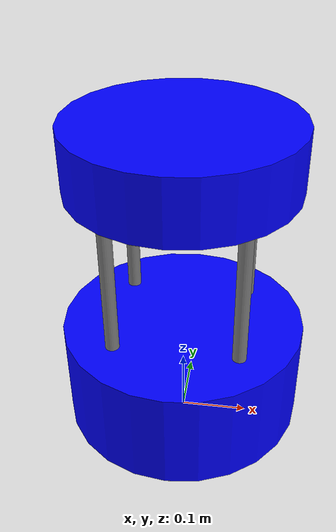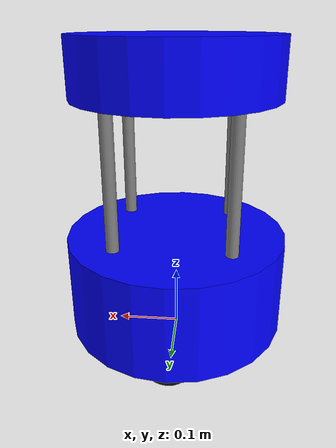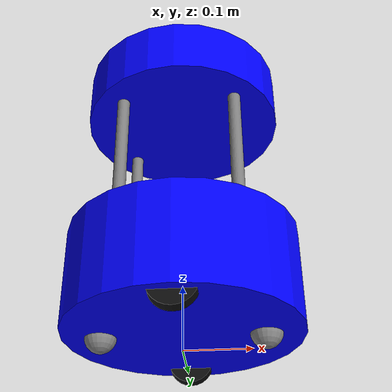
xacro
<?xml version="1.0"?>
<robot xmlns:xacro="http://www.ros.org/wiki/xacro" name="barista_robot">

<!-- ____________________________ Materials defined for this robot____________-->
<material name="blue">
<color rgba="0.0 0.0 1.0 1"/>
</material>

<material name="gray">
<color rgba="0.5 0.5 0.5 1"/>
</material>

<material name="rubber_black">
<color rgba="0.05 0.05 0.05 1"/>
</material>

<!-- include gazebo tags-->
<xacro:include filename="$(find barista_robot_description)/xacro/drive_wheel.xacro"/>
<xacro:include filename="$(find barista_robot_description)/xacro/caster_wheel.xacro"/>
<xacro:include filename="$(find barista_robot_description)/xacro/standoff_rod.xacro"/>
<xacro:include filename="$(find barista_robot_description)/xacro/cup_holder_tray.xacro"/>
<xacro:include filename="$(find barista_robot_description)/xacro/laser_scanner.xacro"/>

<!-- main properties for the robot-->
<xacro:property name="body_radius" value="0.178"/>
<xacro:property name="body_length" value="0.155"/>
<xacro:property name="wheel_length" value="0.0206"/>
<xacro:property name="wheel_radius" value="0.0352"/>
<xacro:property name="caster_radius" value="0.0242"/>
<xacro:property name="standoff_length" value="0.220"/>
<xacro:property name="standoff_radius" value="0.010"/>
<xacro:property name="cup_tray_radius" value="0.160"/>
<xacro:property name="cup_tray_length" value="0.090"/>
<xacro:arg name="include_laser" default="false"/>

<!-- ____________________________ Base link______________________________________ -->
<link name="base_link">
</link>

<link name="base_body">
<visual>
<geometry>
<cylinder length="${body_length}" radius="${body_radius}"/>
</geometry>
<material name="blue"/>
</visual>

<collision>
<origin rpy="0 0 0" xyz="0 0 0"/>
<geometry>
<cylinder length="${body_length}" radius="${body_radius}"/>
</geometry>
</collision>

<!-- mass 7kg-->
<inertial>
<mass value ="7.0"/>
<origin rpy="0 0 0" xyz="0 0 0"/>
<inertia ixx="0.06946" ixy="0.0" ixz="0.0" iyy="0.06946" iyz="0.0" izz="0.11089"/>
</inertial>
</link>

<joint name="base_link_joint" type="fixed">
<origin rpy="0 0 0" xyz="0 0 0.0995"/>
<parent link="base_link"/>
<child link="base_body"/>
</joint>

<!--___________________________Including wheels______________________________-->
<xacro:drive_wheel wheel_name_link="base_wheel_right" joint_name="joint_wheel_right" radius="${wheel_radius}" length="${wheel_length}" y_pos="${-0.150}"/>
<xacro:drive_wheel wheel_name_link="base_wheel_left" joint_name="joint_wheel_left" radius="${wheel_radius}" length="${wheel_length}" y_pos="${0.150}"/>

<!--___________________________Including castor wheels_______________________-->
<xacro:caster_wheel caster_link="front" radius="${caster_radius}" x_pos="0.120"/>
<xacro:caster_wheel caster_link="back" radius="${caster_radius}" x_pos="-0.120"/>

<!--___________________________Including standoff rods_______________________-->
<xacro:standoff_rod standoff_pos="right_positive" radius="${standoff_radius}" length="${standoff_length}" x_pos="0.090" y_pos="0.080"/>
<xacro:standoff_rod standoff_pos="right_negative" radius="${standoff_radius}" length="${standoff_length}" x_pos="0.090" y_pos="-0.080"/>
<xacro:standoff_rod standoff_pos="left_positive" radius="${standoff_radius}" length="${standoff_length}" x_pos="-0.090" y_pos="0.080"/>
<xacro:standoff_rod standoff_pos="left_negative" radius="${standoff_radius}" length="${standoff_length}" x_pos="-0.090" y_pos="-0.080"/>

<!--___________________________Including the cup tray (based_head)___________-->
<xacro:cup_holder_tray radius="${cup_tray_radius}" length="${cup_tray_length}"/>

<!--___________________________Including Laser with conditional_________________________-->
<xacro:if value="$(arg include_laser)">
    <xacro:Laser_scanner/>
</xacro:if>

<xacro:if value="$(arg include_laser)">
    <!-- ros2_control config -->
    <ros2_control name="GazeboSimSystem" type="system">
    <hardware>
    <!-- Gazebo Sim integration plugin -->
    <plugin>gz_ros2_control/GazeboSimSystem</plugin>
    </hardware>

    <joint name="laser_scan_link_joint">
    <command_interface name="position">
    <param name="min">-0.05</param>
    <param name="max">0.0</param>
    </command_interface>
    <state_interface name="position"/>
    <state_interface name="velocity"/>
    <state_interface name="effort"/>
    </joint>

    <joint name="laser_scan_model_link_joint">
    <command_interface name="velocity">
    <param name="min">0.0</param>
    <param name="max">2.0</param>
    </command_interface>
    <state_interface name="position"/>
    <state_interface name="velocity"/>
    <state_interface name="effort"/>
    </joint>
    </ros2_control>

    <!-- Gazebo Sim system plugin that boots the controller manager and parses the ros2_control tags -->
    <gazebo>
    <plugin filename="gz_ros2_control-system"
    name="gz_ros2_control::GazeboSimROS2ControlPlugin">
    <!-- Controller configuration YAML file -->
    <parameters>$(find barista_robot_description)/config/controller_position_velocity.yaml</parameters>
    </plugin>
    </gazebo>
</xacro:if>

<!-- ______________________________PLUGINS for the robot, velocity, laser, etc-->
<!--Joint State Publisher Plugin-->
<!-- get the current joint angles-->
<gazebo>
<plugin filename="gz-sim-joint-state-publisher-system"
name="gz::sim::systems::JointStatePublisher">
<topic>/joint_states</topic>
<update_rate>30</update_rate>
<!-- Publish the state of these joints -->
<joint_name>joint_wheel_left</joint_name>
<joint_name>joint_wheel_right</joint_name>
<joint_name>front_yaw_joint</joint_name>
<joint_name>back_yaw_joint</joint_name>
<joint_name>front_roll_joint</joint_name>
<joint_name>back_roll_joint</joint_name>
<joint_name>front_pitch_joint</joint_name>
<joint_name>back_pitch_joint</joint_name>
<xacro:if value="$(arg include_laser)">
    <joint_name>laser_scan_link_joint</joint_name>
    <joint_name>laser_scan_model_link_joint</joint_name>
</xacro:if>
</plugin>
</gazebo>

<!-- Differential Drive Plugin -->
<!-- move the links and the joints accordingly-->
<gazebo>
<plugin
filename="gz-sim-diff-drive-system"
name="gz::sim::systems::DiffDrive">
<left_joint>joint_wheel_left</left_joint>
<right_joint>joint_wheel_right</right_joint>
<wheel_separation>0.3</wheel_separation>
<wheel_radius>0.0352</wheel_radius>
<topic>/cmd_vel</topic>
<publish_odom>true</publish_odom>
<publish_odom_tf>true</publish_odom_tf>
<publish_wheel_tf>true</publish_wheel_tf>
<odom_topic>/odom</odom_topic>
<tf_topic>/tf</tf_topic>
<frame_id>odom</frame_id>
<child_frame_id>base_link</child_frame_id>
</plugin>
</gazebo>

<!-- ___________________________________________________ Enable Sensors in Gazebo Sim -->
<gazebo>
<plugin filename="gz-sim-sensors-system" name="gz::sim::systems::Sensors">
<!-- use ogre2 if ogre v2.x is installed, otherwise use ogre -->
<render_engine>ogre2</render_engine>
</plugin>
</gazebo>

</robot>

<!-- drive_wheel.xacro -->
<robot xmlns:xacro="http://www.ros.org/wiki/xacro">

<xacro:macro name="drive_wheel" params="wheel_name_link joint_name radius length y_pos">

<link name="${wheel_name_link}">
<visual>
<origin rpy="1.5707 0 0" xyz="0 0 0"/>
<geometry>
<!-- cylinders aligned along axis Z, rotate around x (90/pi)-->
<cylinder length="${length}" radius="${radius}"/>
</geometry>
<material name="rubber_black"/>
</visual>

<collision>
<origin xyz="0 0 0" rpy="1.5707 0 0"/>
<geometry>
<cylinder length="${length}" radius="${radius}"/>
</geometry>
</collision>
<!-- mass = 0.5kg-->
<inertial>
<mass value="0.5"/>
<origin xyz="0 0 0" rpy="1.5707 0 0"/>
<inertia ixx="0.000173" ixy="0.0" ixz="0.0" iyy="0.000310" iyz="0.0" izz="0.000173"/>
</inertial>
</link>

<gazebo reference="${wheel_name_link}">
<collision>
<surface>
<friction>
<ode>
<mu>1.0</mu>
<mu2>1.0</mu2>
</ode>
</friction>
<contact>
<ode>
<kp>10000000.0</kp>
<kd>10000000.0</kd>
</ode>
</contact>
</surface>
</collision>
</gazebo>

<joint name="${joint_name}" type="continuous">
<origin rpy="0 0 0" xyz="0.0 ${y_pos} -0.0643"/>
<parent link="base_body"/>
<child link="${wheel_name_link}"/>
<axis xyz="0 1 0"/>
<limit effort="10000" velocity="1000"/>
<joint_properties damping="1.0" friction="1.0"/>
</joint>
</xacro:macro>

</robot>

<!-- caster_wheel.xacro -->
<robot xmlns:xacro="http://www.ros.org/wiki/xacro">

<xacro:macro name="caster_wheel" params="caster_link radius x_pos">

<link name="${caster_link}_yaw_link">
<visual>
<origin rpy="0 0 0" xyz="0 0 0"/>
<geometry>
<cylinder length="0.002" radius="0.005"/>
</geometry>
<material name="blue"/>
</visual>

<collision>
<origin xyz="0 0 0" rpy="0 0 0"/>
<geometry>
<cylinder length="0.002" radius="0.005"/>
</geometry>
</collision>
<inertial>
<mass value="0.01"/>
<origin xyz="0 0 0" rpy="0 0 0"/>
<inertia
ixx="6.58e-08" ixy="0.0" ixz="0.0"
iyy="6.58e-08" iyz="0.0"
izz="1.25e-07"/>
</inertial>
</link>

<joint name="${caster_link}_yaw_joint" type="continuous">
<origin rpy="0 0 0" xyz="${x_pos} 0 -0.0753"/>
<parent link="base_body"/>
<child link="${caster_link}_yaw_link"/>
<axis xyz="0 0 1"/>
<limit effort="1000.0" velocity="100.0" />
<dynamics damping="0.0" friction="0.1"/>
</joint>

<link name="${caster_link}_roll_link">
<visual>
<origin rpy="0 1.5707 0" xyz="0 0 0"/>
<geometry>
<cylinder length ="0.002" radius="0.005"/>
</geometry>
<material name="gray"/>
</visual>

<collision>
<origin xyz="0 0 0" rpy="0 1.5707 0"/>
<geometry>
<cylinder length="0.002" radius="0.005"/>
</geometry>
</collision>
<inertial>
<mass value="0.01"/>
<origin xyz="0 0 0" rpy="0 0 0"/>
<inertia
ixx="1.25e-07" ixy="0.0" ixz="0.0"
iyy="6.58e-08" iyz="0.0"
izz="6.58e-08"/>
</inertial>
</link>

<joint name="${caster_link}_roll_joint" type="continuous">
<origin rpy="0 0 0" xyz="0 0 0"/>
<parent link="${caster_link}_yaw_link"/>
<child link="${caster_link}_roll_link"/>
<axis xyz="1 0 0"/>
<limit effort="1000.0" velocity="100.0" />
<dynamics damping="0.0" friction="0.1"/>
</joint>

<link name="${caster_link}_pitch_link">
<visual>
<origin rpy="0 0 0" xyz="0 0 0"/>
<geometry>
<sphere radius="${radius}"/>
</geometry>
<material name="gray"/>
</visual>

<collision>
<origin xyz="0 0 0" rpy="0 0 0"/>
<geometry>
<sphere radius="${radius}"/>
</geometry>
</collision>
<inertial>
<mass value="0.05"/>
<origin xyz="0 0 0" rpy="0 0 0"/>
<inertia
ixx="1.171e-05" ixy="0.0" ixz="0.0"
iyy="1.171e-05" iyz="0.0"
izz="1.171e-05"/>
</inertial>
</link>

<gazebo reference="${caster_link}_pitch_link">
<collision>
<surface>
<friction>
<ode>
<mu>0.001</mu>
<mu2>0.001</mu2>
</ode>
</friction>
<contact>
<ode>
<kp>10000000.0</kp>
<kd>10000000.0</kd>
</ode>
</contact>
</surface>
</collision>
</gazebo>

<joint name="${caster_link}_pitch_joint" type="continuous">
<origin rpy="0 0 0" xyz="0 0 0" />
<parent link="${caster_link}_roll_link" />
<child link="${caster_link}_pitch_link" />
<axis xyz="0 1 0" />
<limit effort="1000.0" velocity="100.0" />
<dynamics damping="0.0" friction="0.1"/>
</joint>

</xacro:macro>
</robot>

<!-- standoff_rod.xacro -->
<robot xmlns:xacro="http://www.ros.org/wiki/xacro">

<xacro:macro name="standoff_rod" params="standoff_pos radius length x_pos y_pos">

<link name="base_standoff_${standoff_pos}">
<visual>
<geometry>
<cylinder length="${length}" radius="${radius}"/>
</geometry>
<material name="gray"/>
</visual>

<collision>
<origin xyz="0 0 0" rpy="0 0 0"/>
<geometry>
<cylinder length="${length}" radius="${radius}"/>
</geometry>
</collision>
<inertial>
<mass value="0.18"/>
<origin xyz="0 0 0" rpy="0 0 0"/>
<inertia
ixx="7.305e-04" ixy="0.0" ixz="0.0"
iyy="7.305e-04" iyz="0.0"
izz="9.0e-06"/>
</inertial>
</link>

<joint name="joint_standoff_${standoff_pos}" type="fixed">
<origin rpy="0 0 0" xyz="${x_pos} ${y_pos} 0.1875"/>
<parent link="base_body"/>
<child link="base_standoff_${standoff_pos}"/>
</joint>

</xacro:macro>

 </robot>

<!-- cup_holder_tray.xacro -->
<robot xmlns:xacro="http://www.ros.org/wiki/xacro">

<xacro:macro name="cup_holder_tray" params="radius length">

<link name="base_head">
<visual>
<geometry>
<cylinder length="${length}" radius="${radius}"/>
</geometry>
<material name="blue"/>
</visual>

<collision>
<origin xyz="0 0 0" rpy="0 0 0"/>
<geometry>
<cylinder length="${length}" radius="${radius}"/>
</geometry>
</collision>
<inertial>
<mass value="2.0"/>
<origin xyz="0 0 0" rpy="0 0 0"/>
<inertia
ixx="0.01415" ixy="0.0" ixz="0.0"
iyy="0.01415" iyz="0.0"
izz="0.0256"/>
</inertial>
</link>

<joint name="joint_head_right_positive" type="fixed">
<origin rpy="0 0 0" xyz="0 0 0.3425"/>
<child link="base_head"/>
<parent link="base_body"/>
</joint>
</xacro:macro>
</robot>
